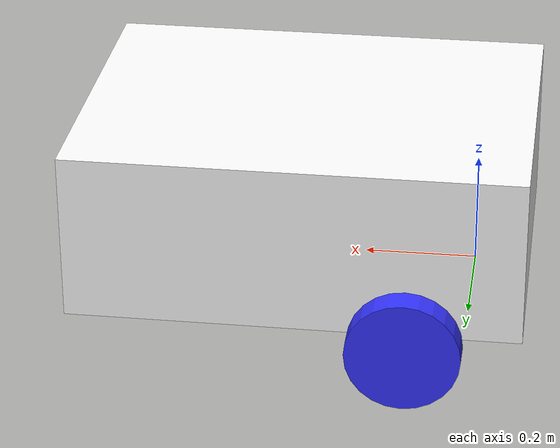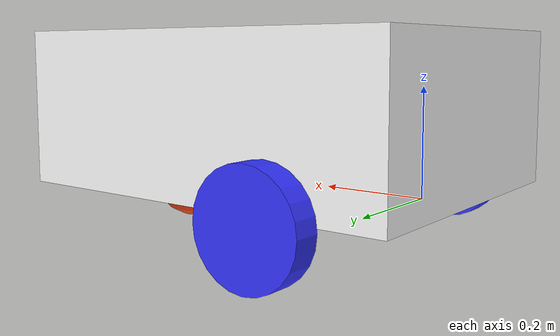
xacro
<?xml version="1.0"?>
<robot xmlns:xacro="http://www.ros.org/wiki/xacro">

<xacro:include filename="inertial_macro.xacro"/>

<material name="white">
    <color rgba="1 1 1 1"/>
</material>

<material name="orange">
    <color rgba="1 0.3 0.1 1"/>
</material>

<material name="blue">
    <color rgba="0.2 0.2 1 1"/>
</material>

<material name="black">
    <color rgba="0 0 0 1"/>
</material>
<material name="red">
    <color rgba="1 0 0 1.0"/>
</material>

<link name="base_link">
</link>
<!--BASE FOOTPRINT link-->
<joint name="base_footprint_joint" type="fixed">
    <parent link="base_link"/>
    <child link="base_footprint"/>
    <origin xyz="0.0 0.0 0.0"/>
</joint>
<link name="base_footprint">
</link>

<!---  CHASSIS LINK   -->

<link name="chassis">
    <visual>
        <origin xyz="0.4 0 0.15"/>
        <geometry>
            <box size="0.8 0.6 0.3"/>
        </geometry>
        <material name="white"/>
    </visual>
    <collision>
        <origin xyz="0.15 0 0.075"/>
        <geometry>
            <box size="0.8 0.6 0.3"/>
        </geometry>
    </collision>
    <xacro:inertial_box mass="1" x="0.8" y="0.6" z="0.3">
        <origin xyz="0.15 0.0 0.075" rpy="0.0 0.0 0.0"/>
    </xacro:inertial_box>

</link>

<gazebo reference="chassis">
    <material>Gazebo/White</material>
</gazebo>

<joint name="chassis_joint" type="fixed">
    <parent link="base_link"/>
    <child link="chassis"/>
    <origin xyz="-0.1 0 0"/>
</joint>

<!--  LEFT WHEEL -->

<joint name="left_wheel_joint" type="continuous">
    <parent link="base_link"/>
    <child link="left_wheel"/>
    <origin xyz="0.1 0.35 0" rpy="-${pi/2} 0.0 0.0"/>
    <axis xyz="0 0 1"/>
</joint>

<link name="left_wheel">
    <visual>
        <geometry>
            <cylinder radius="0.1" length="0.05"/>
        </geometry>
        <material name="blue"/>
    </visual>
    <collision>
        <geometry>
            <cylinder radius="0.1" length="0.05"/>
        </geometry>
    </collision>
    <xacro:inertial_cylinder mass="0.1" length="0.05" radius="0.1">
        <origin xyz="0.0 0.0 0.0" rpy="0.0 0.0 0.0"/>
    </xacro:inertial_cylinder>
</link>

<gazebo reference="left_wheel">
    <material>Gazebo/Blue</material>
</gazebo>

<!--  RIGHT WHEEL -->

<joint name="right_wheel_joint" type="continuous">
    <parent link="base_link"/>
    <child link="right_wheel"/>
    <origin xyz="0.1 -0.35 0" rpy="${pi/2} 0.0 0.0"/>
    <axis xyz="0 0 -1"/>
</joint>

<link name="right_wheel">
    <visual>
        <geometry>
            <cylinder radius="0.1" length="0.05"/>
        </geometry>
        <material name="blue"/>
    </visual>
    <collision>
        <geometry>
            <cylinder radius="0.1" length="0.05"/>
        </geometry>
    </collision>
    <xacro:inertial_cylinder mass="0.1" length="0.05" radius="0.1">
        <origin xyz="0.0 0.0 0.0" rpy="0.0 0.0 0.0"/>
    </xacro:inertial_cylinder>
</link>

<gazebo reference="right_wheel">
    <material>Gazebo/Blue</material>
</gazebo>

<!--- CASTER WHEEL LINK-->

<joint name="caster_wheel_joint" type="fixed">
    <parent link="chassis"/>
    <child link="caster_wheel"/>
    <origin xyz="0.65 0 0"/>
</joint>

<link name="caster_wheel">
    <visual>
        <geometry>
            <sphere radius="0.1"/>
        </geometry>
        <material name="orange"/>
    </visual>
    <collision>
        <geometry>
            <sphere radius="0.1"/>
        </geometry>
    </collision>
    <xacro:inertial_sphere mass = "0.1" radius = "0.1">
        <origin xyz="0.0 0.0 0.0" rpy="0.0 0.0 0.0"/>
    </xacro:inertial_sphere>
</link>

<gazebo reference="caster_wheel">
    <material>Gazebo/Black</material>
    <mu1 value = "0.001"/>
    <mu2 value = "0.001"/>
</gazebo>

</robot>
